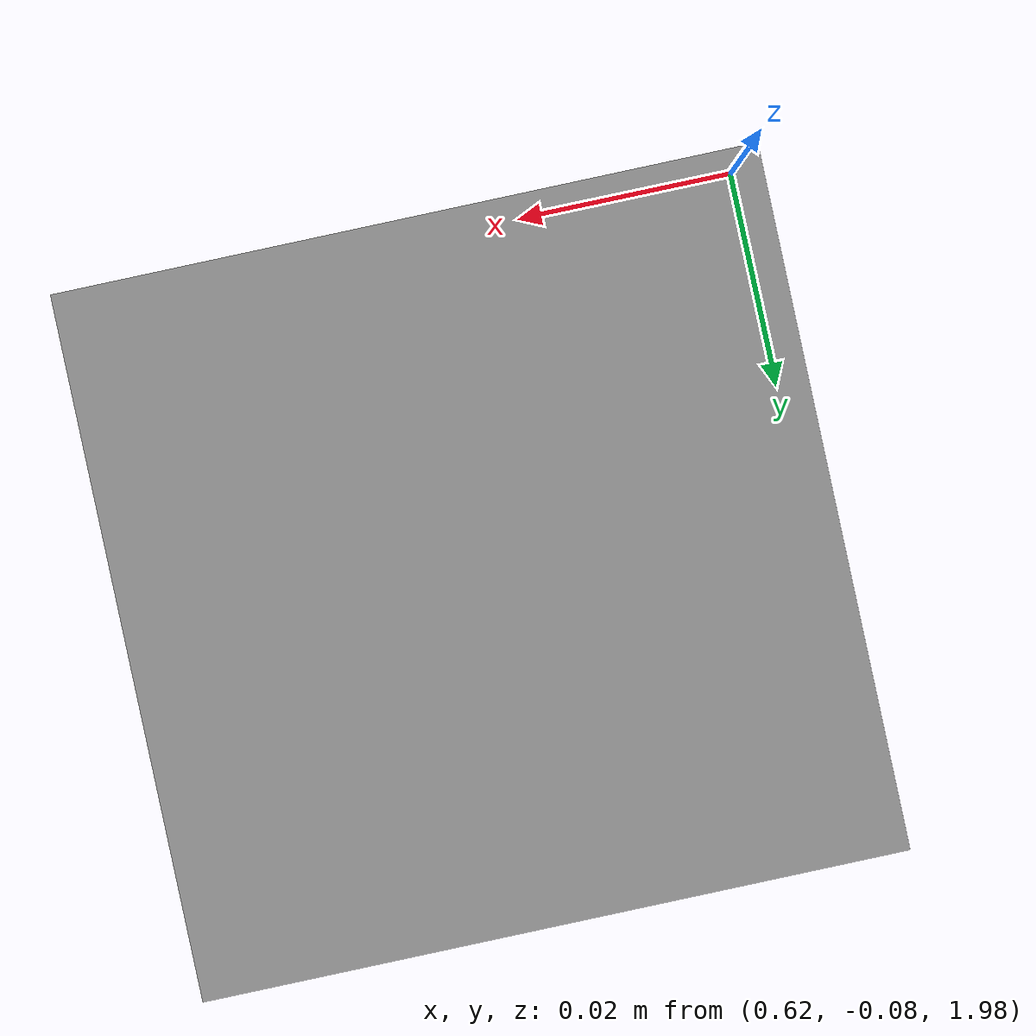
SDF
<?xml version="1.0" ?>
<sdf version="1.4">
  <world name="default">
    <physics type="ode">
      <gravity>0 0 -9.81</gravity>
      <ode>
        <solver>
          <type>quick</type>
          <iters>20</iters>
          <sor>1.0</sor>
        </solver>
        <constraints>
          <cfm>0.0</cfm>
          <erp>0.2</erp>
          <contact_max_correcting_vel>100.0</contact_max_correcting_vel>
          <contact_surface_layer>0.0</contact_surface_layer>
        </constraints>
      </ode>
      <real_time_update_rate>1000</real_time_update_rate>
      <max_step_size>0.001</max_step_size>
    </physics>
    <light type="directional" name="light1">
      <cast_shadows>true</cast_shadows>
      <pose>-2 0 4 0 0 0</pose>
      <diffuse>1.0 1.0 1.0 1</diffuse>
      <specular>0.1 0.1 0.1 1</specular>
      <attenuation>
        <range>20</range>
        <constant>0.9</constant>
        <linear>0.01</linear>
        <quadratic>0.001</quadratic>
      </attenuation>
      <direction>0.2 0.0 -1.0</direction>
    </light>
    <!-- A ground plane -->
    <include>
      <uri>model://ground_plane</uri>
    </include>
    <!-- No table and no cube: the stress test moves the whole arm through random poses (docs/stress-test.md) -->

    <!-- Hovering camera for recording experiments -->
    <model name="recording_camera">
      <static>true</static>
      <pose>0.65 -0.05 2.0 0 1.5708 0</pose>
      <link name="camera_link">
        <sensor type="camera" name="recording_camera">
          <camera>
            <horizontal_fov>1.047</horizontal_fov>
            <image>
              <width>1280</width>
              <height>720</height>
              <format>R8G8B8</format>
            </image>
            <clip>
              <near>0.01</near>
              <far>300</far>
            </clip>
          </camera>
          <plugin name="camera_plugin" filename="libgazebo_ros_camera.so">
            <alwaysOn>true</alwaysOn>
            <updateRate>30</updateRate>
            <cameraName>recording_camera</cameraName>
            <imageTopicName>image_raw</imageTopicName>
            <cameraInfoTopicName>camera_info</cameraInfoTopicName>
            <frameName>recording_camera_frame</frameName>
          </plugin>
        </sensor>
        <visual name="camera_visual">
          <geometry>
            <box>
              <size>0.05 0.05 0.05</size>
            </box>
          </geometry>
          <material>
            <script>
              <uri>file://Media/materials/scripts/gazebo.material</uri>
              <name>Gazebo/Grey</name>
            </script>
          </material>
        </visual>
      </link>
    </model>

    <gui fullscreen="0">
      <camera name="user_camera">
        <pose>0.7 -0.04 2.15 0.000000 1.123640 3.132190</pose>
        <view_controller>orbit</view_controller>
      </camera>
    </gui>
  </world>
</sdf>
